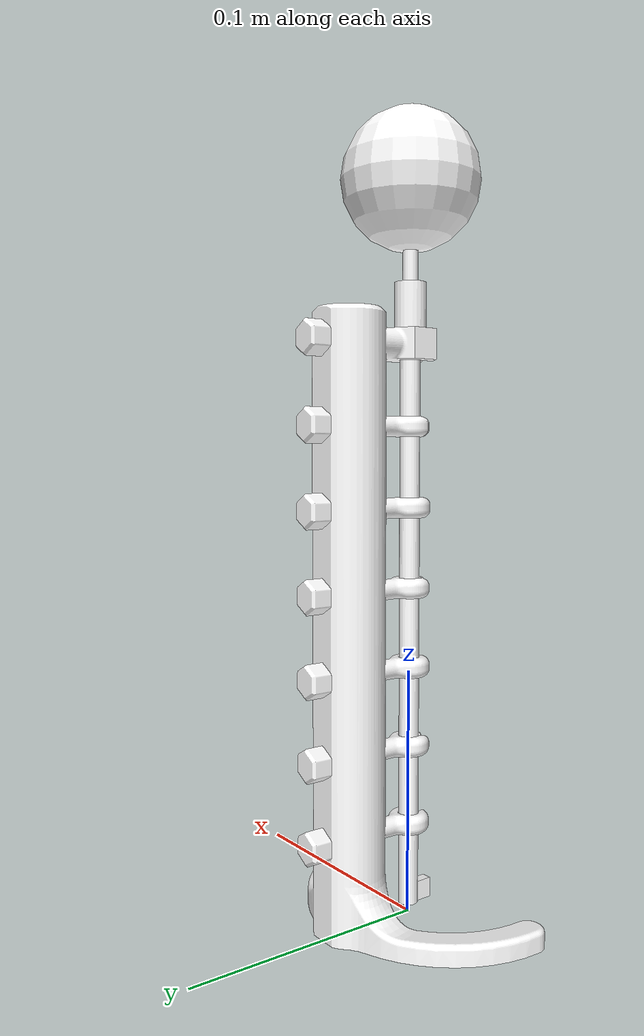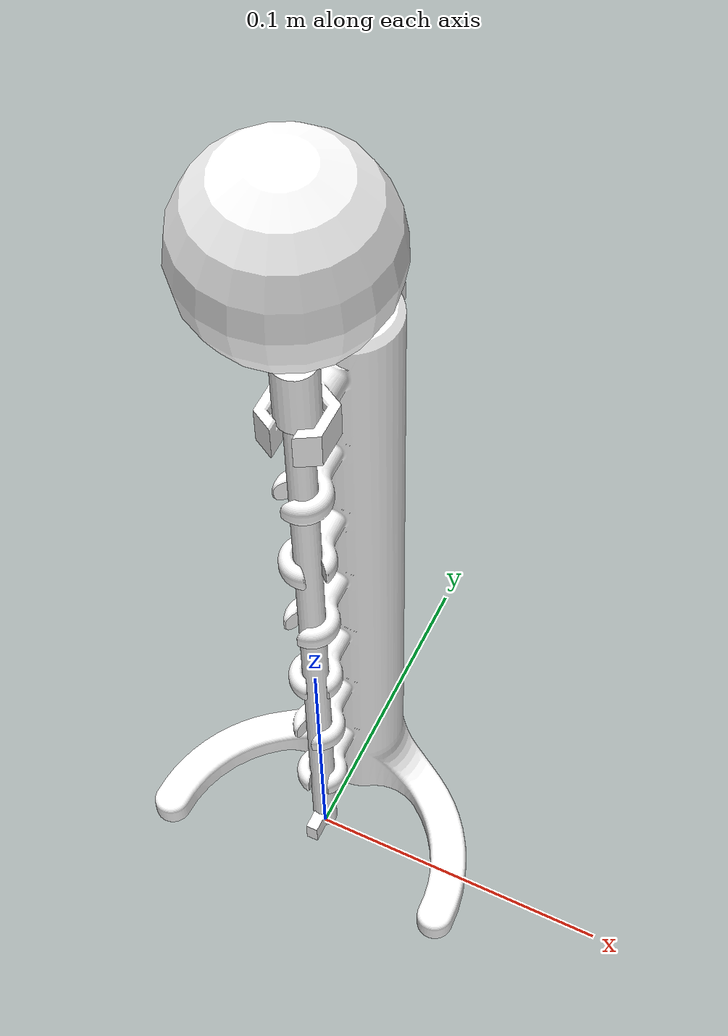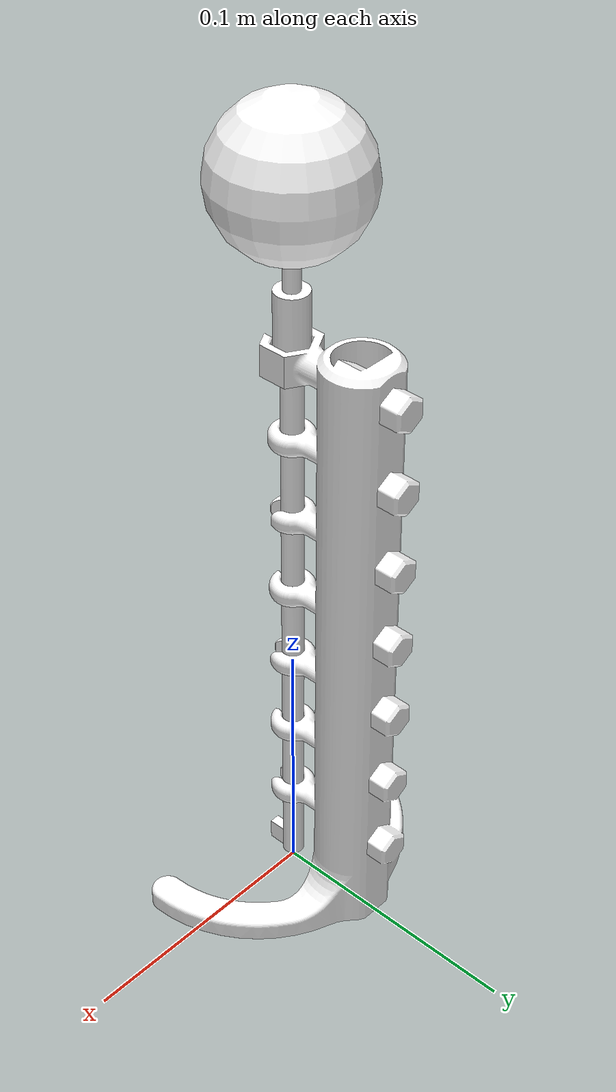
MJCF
<mujoco model="V3_Sphere">

  <asset>
    <mesh name="vertical_base" file="vertical_base.stl" scale="1 1 1"/>
    <mesh name="vertical_rod" file="vertical_rod.stl" scale="1 1 1"/>

    <material name="object_material" rgba="1 1 1 1" shininess="0.3"/>
  </asset>

  <default>
    <default class="visual">
      <geom contype="0" conaffinity="0" group="2"/>
    </default>
    <default class="collision">
      <geom group="3"/>
    </default>
  </default>

  <worldbody>
    <body name="vertical_base" pos="0 0 0">
      <geom name="vertical_base" type="mesh" mesh="vertical_base" material="object_material" class="visual"/>
      <geom type="cylinder" size="0.014 0.121" pos="0 0.02985 0.121" density="248" class="collision"/>
      <!-- 15deg platform1: CCW, 20% PLA density -->
      <geom size="0.0026 0.00792 0.004" quat="0.9914449 0 0 0.1305262" pos="-0.00548 -0.00117 0.038" type="box" density="248" class="collision"/>
      <geom size="0.0026 0.00792 0.004" quat="0.9914449 0 0 0.1305262" pos="0.00534 0.00172 0.038" type="box" density="248" class="collision"/>
      <geom size="0.003 0.002 0.004" quat="0.9914449 0 0 0.1305262" pos="-0.00160 0.00599 0.038" type="box" density="248" class="collision"/>
      <!-- 15deg platform2: CW, 20% PLA density -->
      <geom size="0.0026 0.00792 0.004" quat="0.9914449 0 0 -0.1305262" pos="0.00548 -0.00117 0.070" type="box" density="248" class="collision"/>
      <geom size="0.0026 0.00792 0.004" quat="0.9914449 0 0 -0.1305262" pos="-0.00534 0.00172 0.070" type="box" density="248" class="collision"/>
      <geom size="0.003 0.002 0.004" quat="0.9914449 0 0 -0.1305262" pos="0.00160 0.00599 0.070" type="box" density="248" class="collision"/>
      <!-- 30deg platform1: CCW, 20% PLA density -->
      <geom size="0.0026 0.00792 0.004" quat="0.9659258 0 0 0.2588190" pos="-0.00499 -0.00255 0.102" type="box" density="248" class="collision"/>
      <geom size="0.0026 0.00792 0.004" quat="0.9659258 0 0 0.2588190" pos="0.00471 0.00305 0.102" type="box" density="248" class="collision"/>
      <geom size="0.003 0.002 0.004" quat="0.9659258 0 0 0.2588190" pos="-0.00310 0.00537 0.102" type="box" density="248" class="collision"/>
      <!-- 30deg platform2: CW, 20% PLA density -->
      <geom size="0.0026 0.00792 0.004" quat="0.9659258 0 0 -0.2588190" pos="0.00499 -0.00255 0.134" type="box" density="248" class="collision"/>
      <geom size="0.0026 0.00792 0.004" quat="0.9659258 0 0 -0.2588190" pos="-0.00471 0.00305 0.134" type="box" density="248" class="collision"/>
      <geom size="0.003 0.002 0.004" quat="0.9659258 0 0 -0.2588190" pos="0.00310 0.00537 0.134" type="box" density="248" class="collision"/>
      <!-- 45deg platform1: CCW, 20% PLA density -->
      <geom size="0.0026 0.00792 0.004" quat="0.9238795 0 0 0.3826834" pos="-0.00416 -0.00376 0.166" type="box" density="248" class="collision"/>
      <geom size="0.0026 0.00792 0.004" quat="0.9238795 0 0 0.3826834" pos="0.00376 0.00416 0.166" type="box" density="248" class="collision"/>
      <geom size="0.003 0.002 0.004" quat="0.9238795 0 0 0.3826834" pos="-0.00438 0.00438 0.166" type="box" density="248" class="collision"/>
      <!-- 45deg platform2: CW, 20% PLA density -->
      <geom size="0.0026 0.00792 0.004" quat="0.9238795 0 0 -0.3826834" pos="0.00416 -0.00376 0.198" type="box" density="248" class="collision"/>
      <geom size="0.0026 0.00792 0.004" quat="0.9238795 0 0 -0.3826834" pos="-0.00376 0.00416 0.198" type="box" density="248" class="collision"/>
      <geom size="0.003 0.002 0.004" quat="0.9238795 0 0 -0.3826834" pos="0.00438 0.00438 0.198" type="box" density="248" class="collision"/>
      <!-- Top platform: 20% PLA density -->
      <geom size="0.0032 0.00999 0.004"  pos="0.0062 0.00087 0.228" type="box" density="248" class="collision"/>
      <geom size="0.0032 0.00999 0.004"  pos="-0.0062 0.00087 0.228" type="box" density="248" class="collision"/>
      <geom size="0.003 0.00335 0.004"  pos="0 0.0075 0.228" type="box" density="248" class="collision"/>
    </body>

    <body name="pen_rod" pos="0 0 0.233">
      <joint name="disk_rod_slide_joint" type="slide" pos="0 0 0" axis="0 0 1" range="-0.01 1" damping="100"/>
      <joint name="disk_rod_hinge_joint" type="hinge" axis="0 0 1"/>
      <geom type="sphere" size="0.0275" pos="0 0 0.06053" material="object_material" mass="0.05"/>
      <geom type="cylinder" size="0.003 0.030265" pos="0 0 0.030265" material="object_material" density="248"/>
      <geom type="cylinder" size="0.00625 0.010625" pos="0 0 0.010625" material="object_material" density="248"/>
      <geom type="cylinder" size="0.004 0.114375" pos="0 0 -0.114375" material="object_material" mass="0.05" class="visual"/>
      <geom type="box" size="0.002 0.005 0.004" pos="0 -0.005 -0.22475" material="object_material" density="248"/>
    </body>

  </worldbody>
</mujoco>
